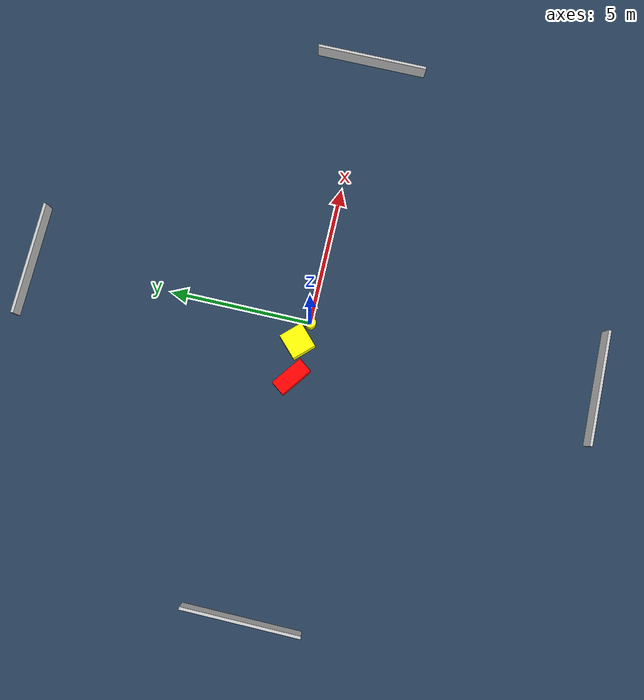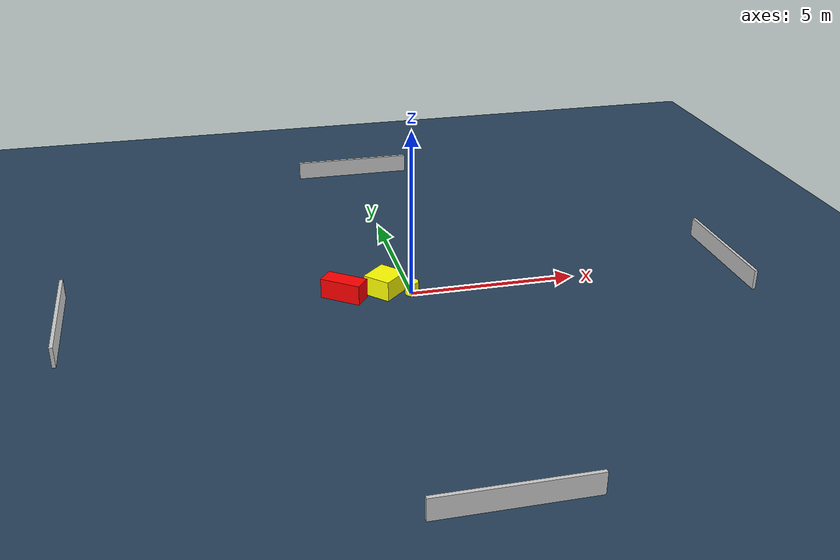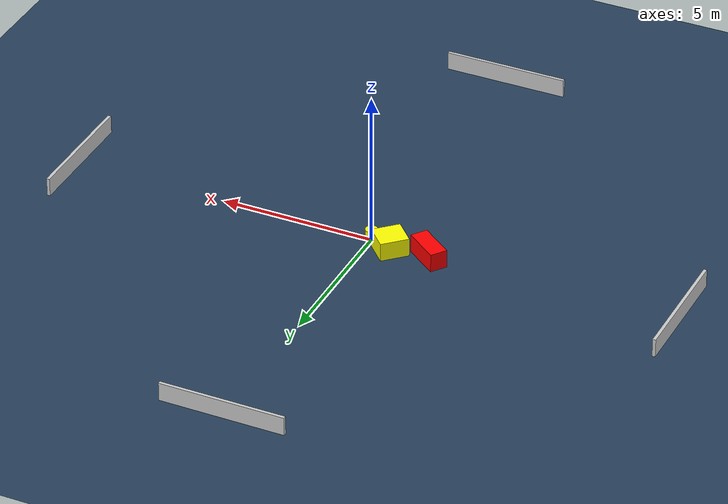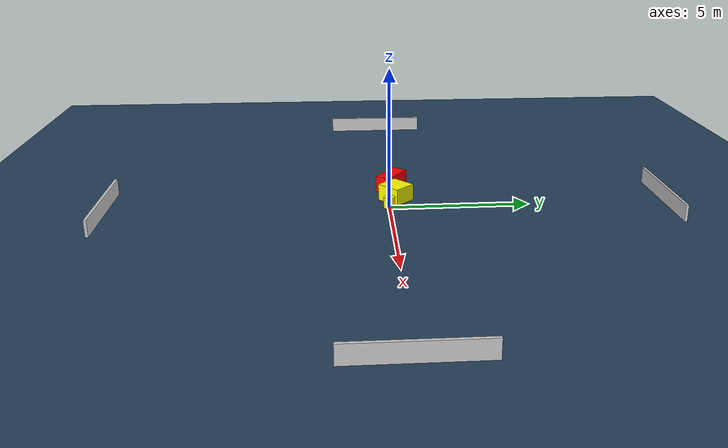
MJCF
<?xml version="1.0" ?>
<mujoco model="generated_environment">
  <option timestep="0.01" integrator="RK4" cone="elliptic"/>
  <default>
    <geom density="1"/>
  </default>
  <asset>
    <texture builtin="gradient" height="3072" name="skybox" rgb1="0.3 0.5 0.7" rgb2="0 0 0" type="skybox" width="512"/>
    <texture builtin="checker" height="300" name="groundplane" rgb1="0.2 0.3 0.4" rgb2="0.1 0.2 0.3" type="2d" width="300"/>
    <material name="groundplane" reflectance="0.2" texrepeat="5 5" texture="groundplane"/>
  </asset>
  <worldbody>
    <light dir="0 0 -1" directional="true" pos="0 0 1.5"/>
    <geom condim="3" friction="0.5 0.005 0.001" material="groundplane" name="floor" pos="0 0 0" size="0 0 0.05" type="plane"/>
    <body name="walls">
      <geom name="wall_1" condim="4" pos="-10.0 0.0 0.3" rgba="0.800000011920929 0.800000011920929 0.800000011920929 1.0" size="0.05 2.0 0.3" type="box"/>
      <geom name="wall_2" condim="4" pos="10.0 0.0 0.3" rgba="0.800000011920929 0.800000011920929 0.800000011920929 1.0" size="0.05 2.0 0.3" type="box"/>
      <geom name="wall_3" condim="4" pos="0.0 -10.0 0.3" rgba="0.800000011920929 0.800000011920929 0.800000011920929 1.0" size="2.0 0.05 0.3" type="box"/>
      <geom name="wall_4" condim="4" pos="0.0 10.0 0.3" rgba="0.800000011920929 0.800000011920929 0.800000011920929 1.0" size="2.0 0.05 0.3" type="box"/>
    </body>
    <body name="robot">
      <joint name="joint_x" type="slide" pos="0 0 0" axis="1 0 0"/>
      <joint name="joint_y" type="slide" pos="0 0 0" axis="0 1 0"/>
      <geom name="robot" type="cylinder" pos="0.0 0.0 0.2" size="0.2 0.2 0.0" mass="5.0" friction="1.0 0.005 0.0001" condim="4" rgba="1.0 1.0 0.0 1.0"/>
    </body>
    <body name="obstacle_1_movable">
      <geom name="obstacle_1_movable" condim="4" pos="-0.7474668745052212 0.2807970625722407 0.3" euler="0 0 313.8221762314226" friction="0.0 0.005 0.001" rgba="1.0 1.0 0.0 1.0" size="0.4325100786405027 0.4596264698338613 0.3" type="box" mass="0.1"/>
      <joint type="free"/>
    </body>
    <body name="obstacle_2_static">
      <geom name="obstacle_2_static" condim="4" pos="-1.982973159489418 0.20142688213757076 0.3" euler="0 0 143.36878755661303" friction="0.0 0.005 0.001" rgba="1.0 0.0 0.0 1.0" size="0.6207125837470675 0.2771631163281042 0.3" type="box"/>
    </body>
  </worldbody>
  <actuator>
    <motor name="actuator_x" joint="joint_x" gear="1" ctrlrange="-1 1"/>
    <motor name="actuator_y" joint="joint_y" gear="1" ctrlrange="-1 1"/>
  </actuator>
</mujoco>
